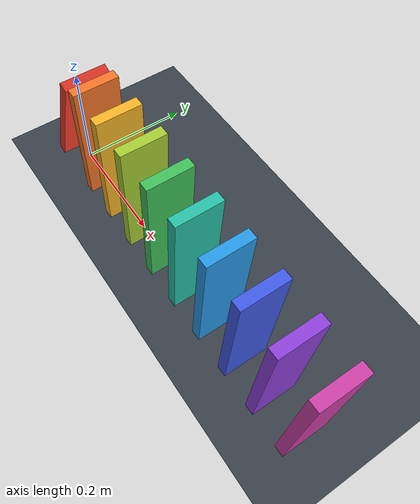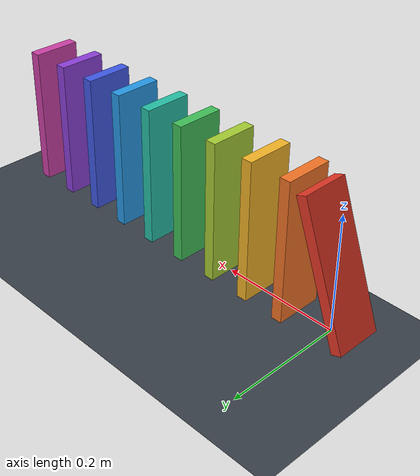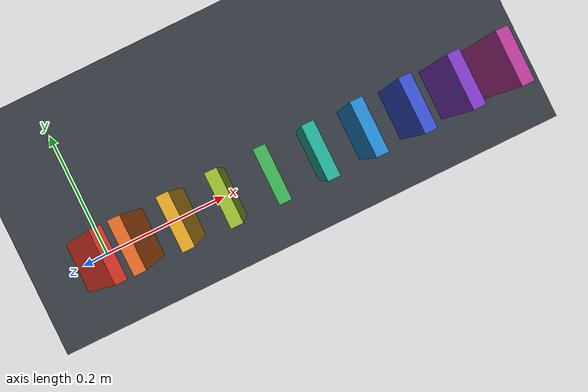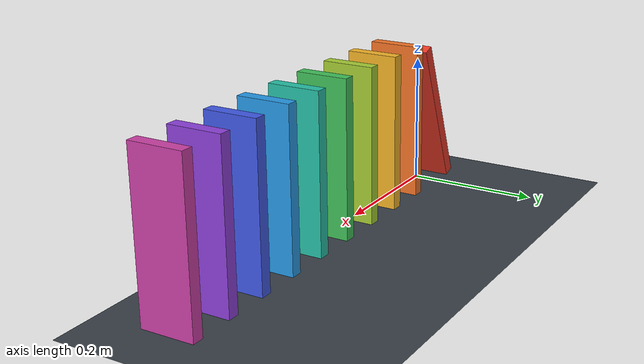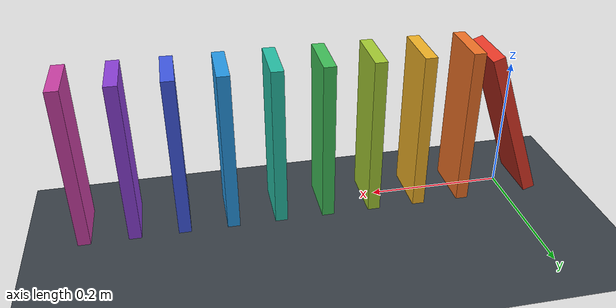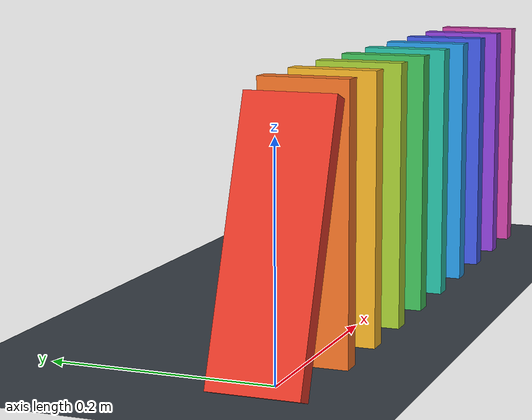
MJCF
<mujoco model="ten_domino_chain">
  <compiler angle="degree"/>
  <option timestep="0.002" gravity="0 0 -9.81" integrator="implicitfast" solver="Newton" iterations="50" tolerance="1e-10"/>
  <size nconmax="200" njmax="1000"/>

  <visual>
    <headlight ambient="0.4 0.4 0.4" diffuse="0.7 0.7 0.7" specular="0.2 0.2 0.2"/>
  </visual>

  <worldbody>
    <light name="overhead" pos="0.35 -0.5 2" dir="0 0 -1"/>
    <camera name="overview" pos="0.8 -1.2 0.75" xyaxes="0.94 0.34 0 -0.15 0.42 0.89"/>

    <geom name="floor" type="plane" pos="0 0 0" size="2 2 0.05" friction="0.9 0.005 0.0001" condim="3" solref="0.008 1" solimp="0.95 0.99 0.001" rgba="0.22 0.25 0.28 1"/>

    <!-- The first domino leans 20 degrees toward +x, with its lower edge on the floor. -->
    <body name="domino1" pos="0 0 0.1158412958" quat="0.9848077530 0 0.1736481777 0">
      <freejoint name="domino1_free"/>
      <geom name="domino1_box" type="box" size="0.009 0.04 0.12" mass="0.12" friction="0.9 0.005 0.0001" condim="3" solref="0.008 1" solimp="0.95 0.99 0.001" rgba="0.9 0.22 0.15 1"/>
    </body>

    <body name="domino2" pos="0.07 0 0.12">
      <freejoint name="domino2_free"/>
      <geom name="domino2_box" type="box" size="0.009 0.04 0.12" mass="0.12" friction="0.9 0.005 0.0001" condim="3" solref="0.008 1" solimp="0.95 0.99 0.001" rgba="0.95 0.45 0.15 1"/>
    </body>

    <body name="domino3" pos="0.14 0 0.12">
      <freejoint name="domino3_free"/>
      <geom name="domino3_box" type="box" size="0.009 0.04 0.12" mass="0.12" friction="0.9 0.005 0.0001" condim="3" solref="0.008 1" solimp="0.95 0.99 0.001" rgba="0.95 0.7 0.15 1"/>
    </body>

    <body name="domino4" pos="0.21 0 0.12">
      <freejoint name="domino4_free"/>
      <geom name="domino4_box" type="box" size="0.009 0.04 0.12" mass="0.12" friction="0.9 0.005 0.0001" condim="3" solref="0.008 1" solimp="0.95 0.99 0.001" rgba="0.65 0.8 0.2 1"/>
    </body>

    <body name="domino5" pos="0.28 0 0.12">
      <freejoint name="domino5_free"/>
      <geom name="domino5_box" type="box" size="0.009 0.04 0.12" mass="0.12" friction="0.9 0.005 0.0001" condim="3" solref="0.008 1" solimp="0.95 0.99 0.001" rgba="0.25 0.75 0.35 1"/>
    </body>

    <body name="domino6" pos="0.35 0 0.12">
      <freejoint name="domino6_free"/>
      <geom name="domino6_box" type="box" size="0.009 0.04 0.12" mass="0.12" friction="0.9 0.005 0.0001" condim="3" solref="0.008 1" solimp="0.95 0.99 0.001" rgba="0.15 0.75 0.65 1"/>
    </body>

    <body name="domino7" pos="0.42 0 0.12">
      <freejoint name="domino7_free"/>
      <geom name="domino7_box" type="box" size="0.009 0.04 0.12" mass="0.12" friction="0.9 0.005 0.0001" condim="3" solref="0.008 1" solimp="0.95 0.99 0.001" rgba="0.15 0.6 0.9 1"/>
    </body>

    <body name="domino8" pos="0.49 0 0.12">
      <freejoint name="domino8_free"/>
      <geom name="domino8_box" type="box" size="0.009 0.04 0.12" mass="0.12" friction="0.9 0.005 0.0001" condim="3" solref="0.008 1" solimp="0.95 0.99 0.001" rgba="0.25 0.35 0.9 1"/>
    </body>

    <body name="domino9" pos="0.56 0 0.12">
      <freejoint name="domino9_free"/>
      <geom name="domino9_box" type="box" size="0.009 0.04 0.12" mass="0.12" friction="0.9 0.005 0.0001" condim="3" solref="0.008 1" solimp="0.95 0.99 0.001" rgba="0.55 0.25 0.85 1"/>
    </body>

    <body name="domino10" pos="0.63 0 0.12">
      <freejoint name="domino10_free"/>
      <geom name="domino10_box" type="box" size="0.009 0.04 0.12" mass="0.12" friction="0.9 0.005 0.0001" condim="3" solref="0.008 1" solimp="0.95 0.99 0.001" rgba="0.8 0.25 0.65 1"/>
    </body>
  </worldbody>
</mujoco>
